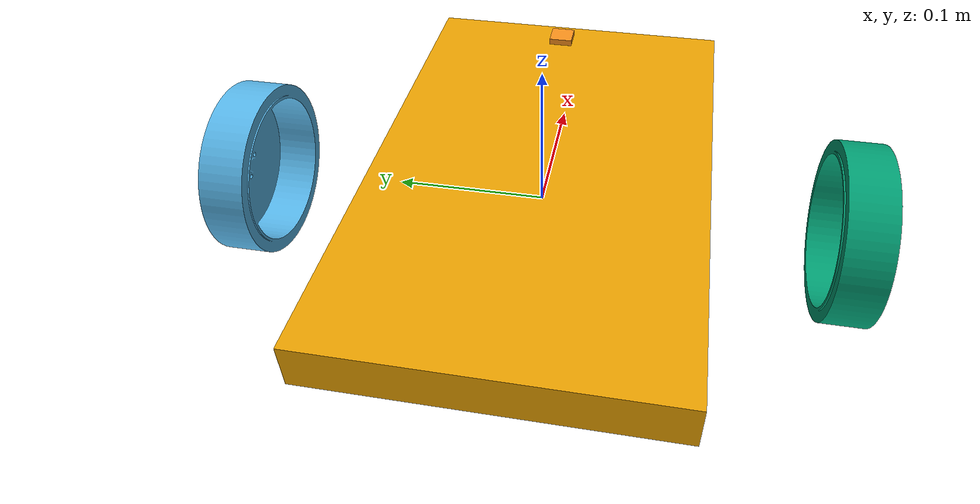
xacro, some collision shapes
<?xml version="1.0"?>
<robot xmlns:xacro="http://www.ros.org/wiki/xacro" name="balance">
    <xacro:arg name="load_chassis" default="true"/>
    <xacro:arg name="load_gimbal" default="true"/>
    <xacro:arg name="load_shooter" default="true"/>
    <xacro:arg name="use_simulation" default="true"/>

    <xacro:if value="$(arg load_chassis)">
        <xacro:include filename="$(find rm_description)/urdf/balance/chassis.urdf.xacro"/>
        <xacro:chassis/>
        <xacro:include filename="$(find rm_description)/urdf/common/imu.urdf.xacro"/>
        <xacro:IMU connected_to="base_link" imu_name="base_imu" xyz="0.08 0. 0.08" rpy="0 0 0"/>
        <xacro:if value="$(arg load_gimbal)">

            <xacro:if value="$(arg load_shooter)">
            </xacro:if>
        </xacro:if>
    </xacro:if>

    <xacro:if value="$(arg use_simulation)">
        <gazebo>
            <plugin name="rm_ros_control" filename="librm_robot_hw_sim.so">
                <robotNamespace>/</robotNamespace>
                <robotSimType>rm_gazebo/RmRobotHWSim</robotSimType>
            </plugin>
        </gazebo>
    </xacro:if>

</robot>

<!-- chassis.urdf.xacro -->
<robot xmlns:xacro="http://www.ros.org/wiki/xacro">

    <xacro:include filename="$(find rm_description)/urdf/balance/rubber_wheel.urdf.xacro"/>

    <!-- https://upload.wikimedia.org/wikipedia/commons/5/52/Wheelbase_and_Track.png -->
    <xacro:property name="wheel_base" value="0.405"/>
    <xacro:property name="wheel_z_offset" value="0"/>

    <xacro:macro name="chassis">

        <link name="base_link">
            <inertial>
                <mass value="4.595"/>
                <origin xyz="-0.000190 -0.000075 0.110987"/>
                <inertia ixx="0.126" ixy="-1.806e-6" ixz="1.142e-4" iyy="5.337e-2"
                         iyz="1.133e-4" izz="8.685e-2"/>
            </inertial>
            <visual>
                <origin xyz="0 0 0.085" rpy="0 0 0"/>
                <geometry>
                    <mesh filename="package://rm_description/meshes/balance/base.stl" scale="0.001 0.001 0.001"/>
                </geometry>
            </visual>
            <collision>
                <origin xyz="0 0 0.018" rpy="0 0 0"/>
                <geometry>
                    <box size="0.35 0.22 0.03"/>
                </geometry>
            </collision>
        </link>

        <xacro:rubber_wheel prefix="left" connected_to="base_link"
                            wheel_x_offset="0" wheel_y_offset="${wheel_base/2}"
                            wheel_z_offset="${wheel_z_offset}" mechanical_reduction="-0.166"/>
        <xacro:rubber_wheel prefix="right" connected_to="base_link"
                            wheel_x_offset="0" wheel_y_offset="${-wheel_base/2}"
                            wheel_z_offset="${wheel_z_offset}" mechanical_reduction="0.166"/>

    </xacro:macro>

</robot>

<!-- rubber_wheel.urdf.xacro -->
<robot xmlns:xacro="http://www.ros.org/wiki/xacro">

    <xacro:property name="wheel_radius" value="0.06"/>
    <xacro:property name="wheel_width" value="0.032"/>
    <xacro:property name="wheel_joint_effort" value="1.0"/>
    <xacro:property name="wheel_joint_velocity" value="50"/>

    <xacro:macro name="rubber_wheel"
                 params="prefix connected_to wheel_x_offset wheel_y_offset wheel_z_offset mechanical_reduction">
        <!--  link  -->
        <link name="${prefix}_wheel">
            <visual>
                <geometry>
                    <xacro:if value="${prefix=='left'}">
                        <mesh filename="package://rm_description/meshes/balance/left_rubber_wheel.stl"
                              scale="0.001 0.001 0.001"/>
                    </xacro:if>
                    <xacro:if value="${prefix=='right'}">
                        <mesh filename="package://rm_description/meshes/balance/right_rubber_wheel.stl"
                              scale="0.001 0.001 0.001"/>
                    </xacro:if>
                </geometry>
            </visual>
            <collision>
                <origin rpy="1.57 0 0" xyz="0 0 0"/>
                <geometry>
                    <cylinder length="0.032" radius="0.06"/>
                </geometry>
            </collision>
            <inertial>
                <mass value="0.23"/>
                <xacro:if value="${prefix=='left'}">
                    <origin xyz="0 0.00419 0"/>
                </xacro:if>
                <xacro:if value="${prefix=='right'}">
                    <origin xyz="0 -0.00419 0"/>
                </xacro:if>
                <inertia ixx="3.048e-4" ixy="0.0" ixz="0.0" iyy="5.647e-4" iyz="0.0" izz="3.048e-4"/>
            </inertial>
        </link>

        <!--  joint  -->
        <joint name="${prefix}_wheel_joint" type="revolute">
            <axis xyz="0 1 0"/>
            <origin xyz="${wheel_x_offset} ${wheel_y_offset} ${wheel_z_offset}" rpy="0 0 0"/>
            <!--      limit not work while type="continuous"-->
            <limit effort="${wheel_joint_effort}" velocity="${wheel_joint_velocity}" lower="-1e16" upper="1e16"/>
            <dynamics damping="0.0" friction="0.05"/>
            <parent link="${connected_to}"/>
            <child link="${prefix}_wheel"/>
        </joint>

        <!-- transmission -->
        <transmission name="${prefix}_wheel_trans">
            <type>transmission_interface/SimpleTransmission</type>
            <actuator name="${prefix}_wheel_actuator">
                <mechanicalReduction>${mechanical_reduction}</mechanicalReduction>
            </actuator>
            <joint name="${prefix}_wheel_joint">
                <hardwareInterface>hardware_interface/EffortJointInterface</hardwareInterface>
            </joint>
        </transmission>

    </xacro:macro>

</robot>

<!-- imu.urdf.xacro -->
<robot xmlns:xacro="http://www.ros.org/wiki/xacro" name="imu">
    <xacro:macro name="IMU" params="connected_to imu_name xyz:='0 0 0' rpy:='0 0 0' ">
        <!-- Imu is fixed to the base link -->
        <joint name="${imu_name}_joint" type="fixed">
            <origin xyz="${xyz}" rpy="${rpy}"/>
            <parent link="${connected_to}"/>
            <child link="${imu_name}"/>
        </joint>
        <!-- Imu link -->
        <link name="${imu_name}">
            <inertial>
                <mass value="0.001"/>
                <origin rpy="0 0 0" xyz="0 0 0"/>
                <inertia ixx="0.0001" ixy="0" ixz="0" iyy="0.000001" iyz="0" izz="0.0001"/>
            </inertial>
            <visual>
                <origin rpy="0 0 0" xyz="0 0 0"/>
                <geometry>
                    <box size="0.015 0.015 0.004"/>
                </geometry>
            </visual>
            <material name="orange">
                <color rgba="255 108 10 255"/>
            </material>
        </link>
        <gazebo reference="${imu_name}">
            <material>Gazebo/Orange</material>
        </gazebo>
        <gazebo reference="${imu_name}_joint">
            <disableFixedJointLumping>true</disableFixedJointLumping>
        </gazebo>
    </xacro:macro>
</robot>
